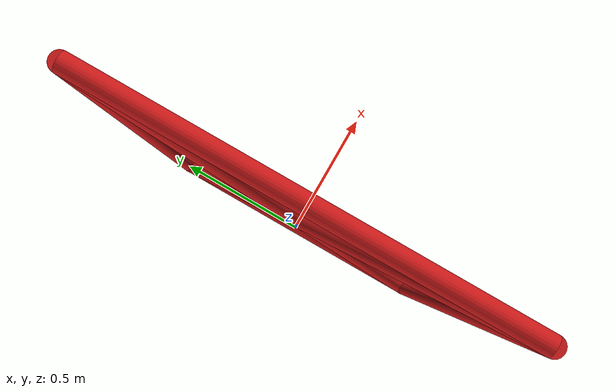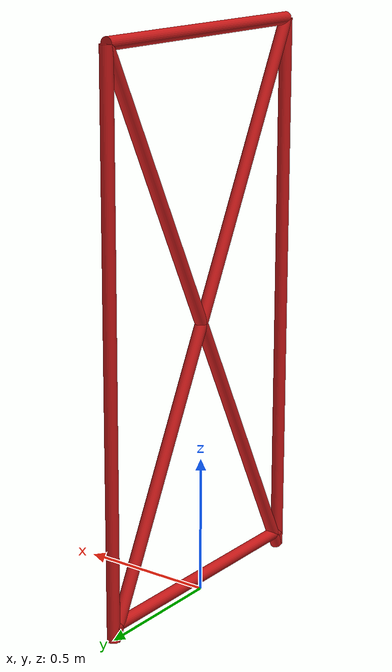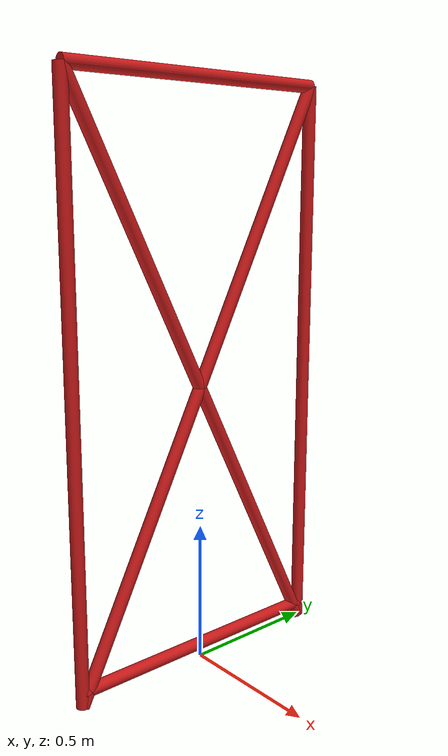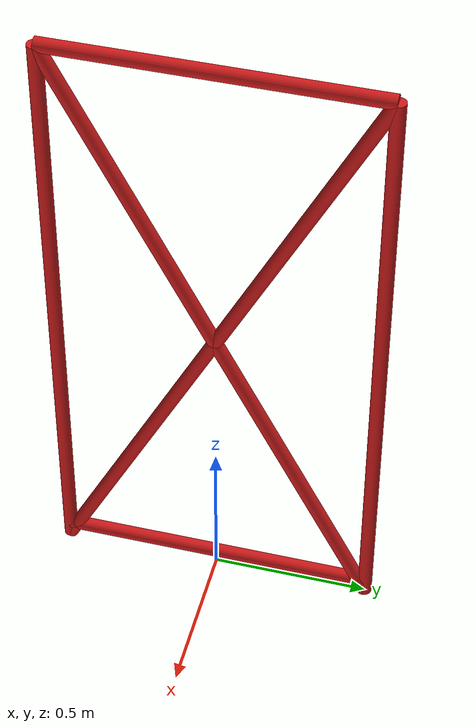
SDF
<?xml version="1.0" ?>
<sdf version="1.9">
  <model name="pipe_obstacle">
    <static>true</static>

    <!-- Vertical posts at x=0, y=±0.5 -->
    <link name="post_left">
      <pose>0 -0.5 1.0 0 0 0</pose>
      <collision name="col"><geometry><cylinder><radius>0.0225</radius><length>2.0</length></cylinder></geometry></collision>
      <visual name="vis">
        <geometry><cylinder><radius>0.0225</radius><length>2.0</length></cylinder></geometry>
        <material><ambient>0.8 0.1 0.1 1</ambient><diffuse>0.8 0.1 0.1 1</diffuse></material>
      </visual>
    </link>

    <link name="post_right">
      <pose>0 0.5 1.0 0 0 0</pose>
      <collision name="col"><geometry><cylinder><radius>0.0225</radius><length>2.0</length></cylinder></geometry></collision>
      <visual name="vis">
        <geometry><cylinder><radius>0.0225</radius><length>2.0</length></cylinder></geometry>
        <material><ambient>0.8 0.1 0.1 1</ambient><diffuse>0.8 0.1 0.1 1</diffuse></material>
      </visual>
    </link>

    <!-- Diagonal 1: (y=-0.5,z=0) → (y=+0.5,z=2.0). Center at (y=0,z=1.0). Roll = -0.4636 rad. -->
    <link name="diag_1">
      <pose>0 0 1.0 -0.4636 0 0</pose>
      <collision name="col"><geometry><cylinder><radius>0.0225</radius><length>2.236</length></cylinder></geometry></collision>
      <visual name="vis">
        <geometry><cylinder><radius>0.0225</radius><length>2.236</length></cylinder></geometry>
        <material><ambient>0.8 0.1 0.1 1</ambient><diffuse>0.8 0.1 0.1 1</diffuse></material>
      </visual>
    </link>

    <!-- Diagonal 2: (y=+0.5,z=0) → (y=-0.5,z=2.0). Center at (y=0,z=1.0). Roll = +0.4636 rad. -->
    <link name="diag_2">
      <pose>0 0 1.0 0.4636 0 0</pose>
      <collision name="col"><geometry><cylinder><radius>0.0225</radius><length>2.236</length></cylinder></geometry></collision>
      <visual name="vis">
        <geometry><cylinder><radius>0.0225</radius><length>2.236</length></cylinder></geometry>
        <material><ambient>0.8 0.1 0.1 1</ambient><diffuse>0.8 0.1 0.1 1</diffuse></material>
      </visual>
    </link>

    <!-- Top cross-beam connecting posts -->
    <link name="top_beam">
      <pose>0 0 2.0 1.5708 0 0</pose>
      <collision name="col"><geometry><cylinder><radius>0.0225</radius><length>1.0</length></cylinder></geometry></collision>
      <visual name="vis">
        <geometry><cylinder><radius>0.0225</radius><length>1.0</length></cylinder></geometry>
        <material><ambient>0.8 0.1 0.1 1</ambient><diffuse>0.8 0.1 0.1 1</diffuse></material>
      </visual>
    </link>

    <!-- Bottom cross-beam connecting posts -->
    <link name="bot_beam">
      <pose>0 0 0.05 1.5708 0 0</pose>
      <collision name="col"><geometry><cylinder><radius>0.0225</radius><length>1.0</length></cylinder></geometry></collision>
      <visual name="vis">
        <geometry><cylinder><radius>0.0225</radius><length>1.0</length></cylinder></geometry>
        <material><ambient>0.8 0.1 0.1 1</ambient><diffuse>0.8 0.1 0.1 1</diffuse></material>
      </visual>
    </link>

  </model>
</sdf>
